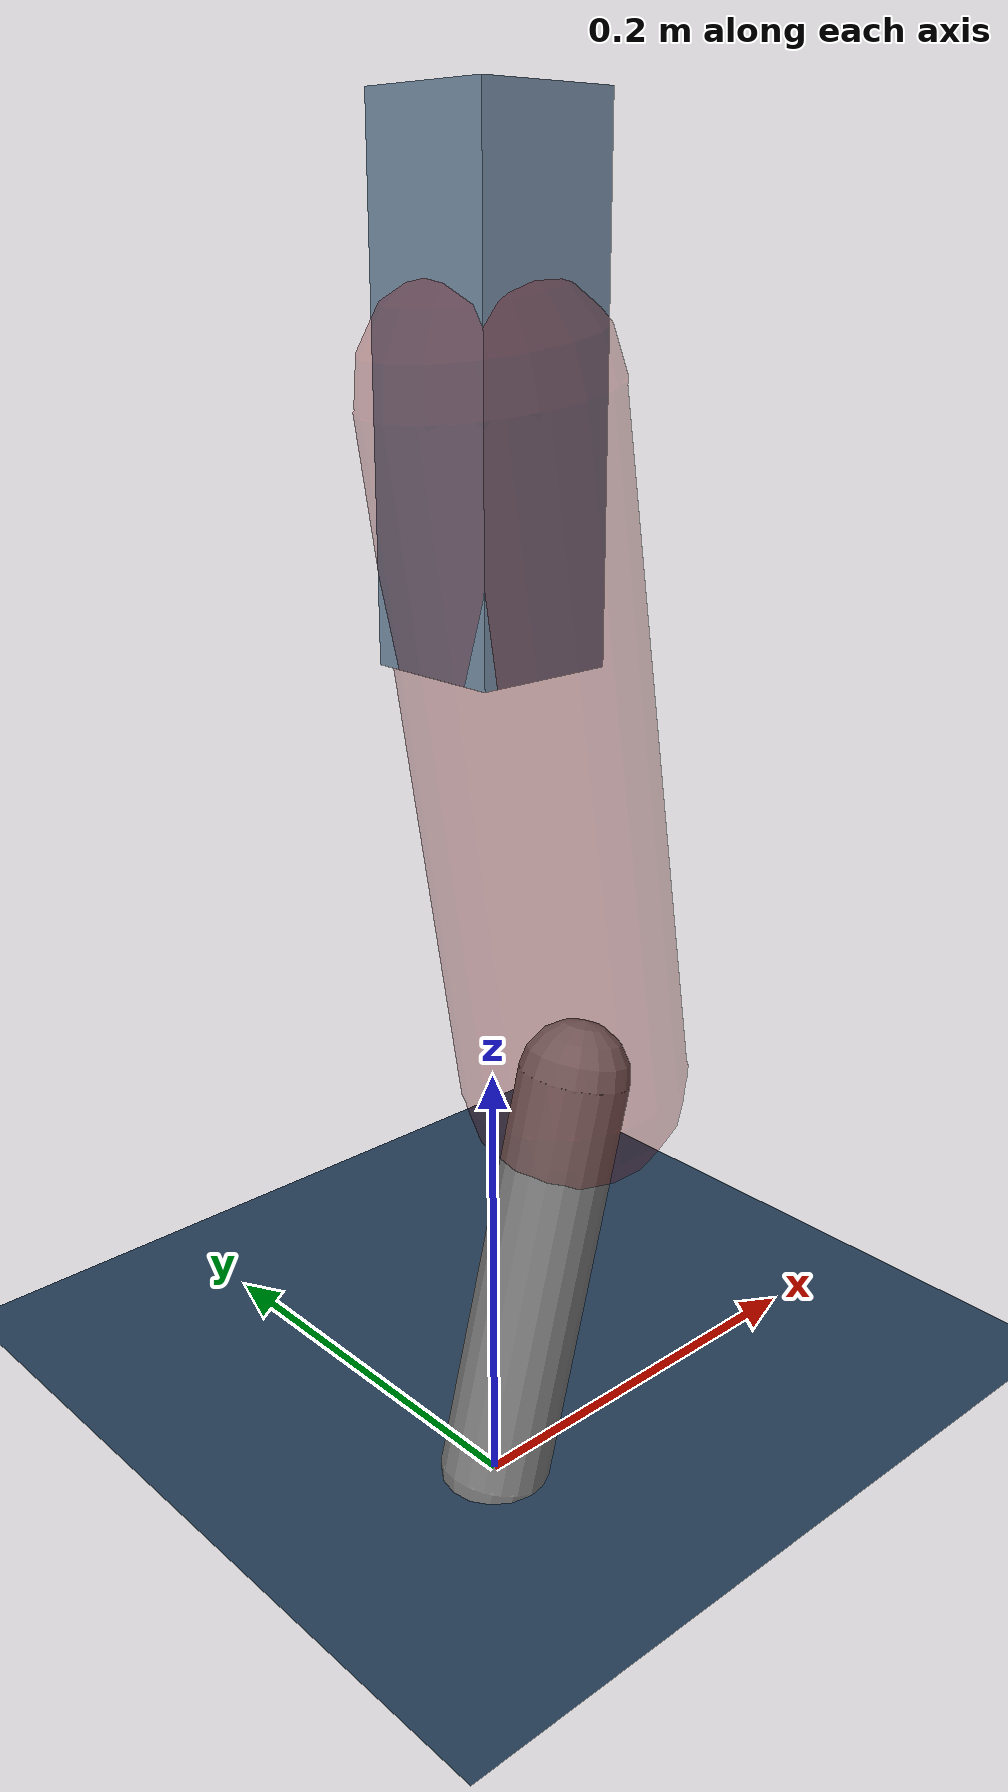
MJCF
<mujoco model="Hopper2D">
	<compiler inertiafromgeom="true" angle="radian" />
	<option timestep="0.001" integrator="implicit" cone="elliptic" solver="Newton" tolerance="1e-10" />

	<default>
		<geom contype="1" conaffinity="1" condim="3" friction="2 0.005 0.0001" solref="0.005 1" />
		<joint limited="true" damping="0.1" />
	</default>

	<asset>
		<texture name="skybox" type="skybox" builtin="gradient" rgb1=".4 .6 .8" rgb2="0 0 0" width="800" height="800" />
		<texture name="grid" type="2d" builtin="checker" rgb1=".1 .2 .3" rgb2=".2 .3 .4" width="300" height="300" mark="edge" markrgb=".2 .3 .4" />
		<material name="ground" texture="grid" texrepeat="1 1" texuniform="true" reflectance="0.1" />
		<material name="leg" rgba="0.5 0.6 0.7 1" />
	</asset>

	<worldbody>

		<geom name="floor" type="plane" size="5 5 0.25" material="ground" />

		<light directional="false" diffuse="0.8 0.8 0.8" specular="0.3 0.3 0.3" pos="0 0 2" dir="0 0 -1" />
		<light mode="targetbodycom" target="base" directional="false" diffuse="0.8 0.8 0.8" specular="0.3 0.3 0.3" pos="0 0 2" dir="0 0 -1" />

		<camera name="fixed" pos="0 -2 1" xyaxes="1 0 0 0 0 1" />
		<camera name="tracking" mode="trackcom" pos="0 -3 1" />

		<body name="root" pos="0 0 0.474847601812182">
			<joint name="slide_x" type="slide" axis="1 0 0" range="-100 100" />
			<joint name="slide_z" type="slide" axis="0 0 1" range="0 10" />

			<body name="base" pos="0 0 0">
				<geom name="torso" type="box" size="0.03 0.03 0.1" mass="2.2409999999999997" material="leg" />

				<body name="link1" pos="0 0 0" euler="0 1.4074500518911641 0">
					<joint type="hinge" axis="0 -1 0" pos="0 0 0" name="hinge1" limited="true" range="-3.14 3.14" stiffness="0" damping="0.1" />
					<geom name="thigh" type="capsule" fromto="0 0 0 0.2940085936381941 0 0" size="0.05" rgba="0.5 0 0 0.3" mass="0.9726232028231241" />

					<body name="link2" pos="0.2940085936381941 0 0" euler="0 0.4165795169601251 0">
						<joint type="hinge" axis="0 -1 0" pos="0 0 0" name="hinge2" limited="true" range="-3.14 3.14" stiffness="0" damping="0.1" />
						<geom name="shank" type="capsule" fromto="0 0 0 0.19083900817398794 0 0" size="0.025" mass="0.39315510735658915" />

					</body>
				</body>
			</body>
		</body>
	</worldbody>

	<actuator>
		<motor name="torque1" joint="hinge1" ctrlrange="-69.83535875793378 69.83535875793378" ctrllimited="true" gear="1" />
		<motor name="torque2" joint="hinge2" ctrlrange="-79.42631817849968 79.42631817849968" ctrllimited="true" gear="1" />
	</actuator>
</mujoco>
